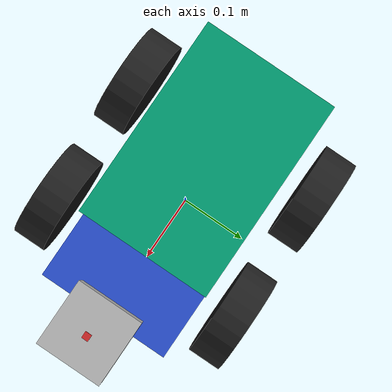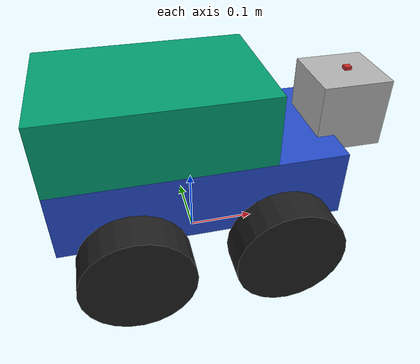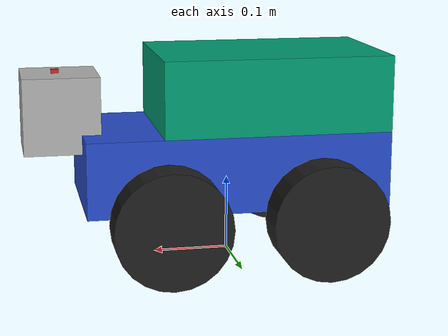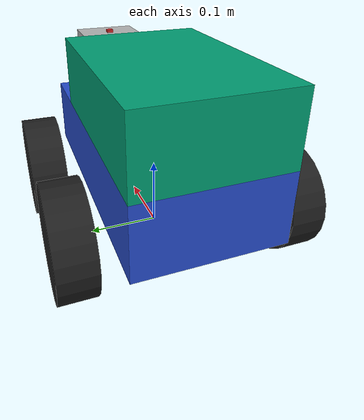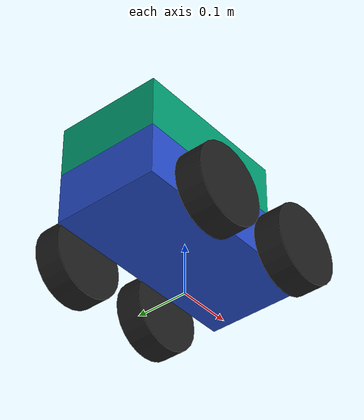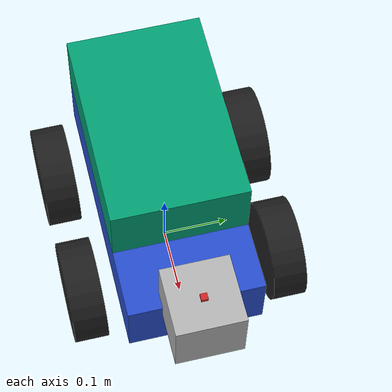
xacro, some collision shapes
<?xml version="1.0"?>
<robot xmlns:xacro="http://www.ros.org/wiki/xacro" name="KoBot">

  <link name="base_link">
  <inertial>
    <origin xyz="0 0 0.125" />
    <mass value="5" />
    <inertia  ixx="0.1" ixy="0.0"  ixz="0.0"  iyy="0.1"  iyz="0.0"  izz="0.1" />
  </inertial>
  <visual>
    <origin xyz="0 0 0.125"/>
    <geometry>
      <box size="0.4 0.2 0.1" />
    </geometry>
  </visual>
  <collision>
    <origin xyz="0 0 0.125"/>
    <geometry>
      <box size="0.4 0.2 0.1" />
    </geometry>
  </collision>
  </link>

  <link name="camera_link">
    <collision>
      <origin xyz="0 0 0" rpy="0 0 0"/>
      <geometry>
    <box size="0.01 0.01 0.01"/>
      </geometry>
    </collision>

    <visual>
      <origin xyz="0 0 0" rpy="0 0 0"/>
      <geometry>
    <box size="0.01 0.01 0.01"/>
      </geometry>
      <material name="red"/>
    </visual>

    <inertial>
      <mass value="1e-5" />
      <origin xyz="0 0 0" rpy="0 0 0"/>
      <inertia ixx="1e-6" ixy="0" ixz="0" iyy="1e-6" iyz="0" izz="1e-6" />
    </inertial>
  </link>

  <joint name="camera_joint" type="fixed">
    <axis xyz="0 1 0" />
    <origin xyz="0.23 0 0.25" rpy="0 0 0"/>
    <parent link="base_link"/>
    <child link="camera_link"/>
  </joint>

  <link name="box">
    <inertial>
      <origin xyz="0 0 0" />
      <mass value="5" />
      <inertia  ixx="0.1" ixy="0.0"  ixz="0.0"  iyy="0.1"  iyz="0.0"  izz="0.1" />
    </inertial>
    <visual>
      <origin xyz="0 0 0"/>
      <geometry>
        <box size="0.3 0.2 0.1" />
      </geometry>
    </visual>
    <collision>
      <origin xyz="0 0 0"/>
      <geometry>
        <box size="0.3 0.2 0.1" />
      </geometry>
    </collision>
  </link>

  <joint name="base_link_box" type="fixed">
    <parent link="base_link"/>
    <child link="box"/>
    <axis xyz="0 0 0"/>
    <origin xyz="-0.05 0 0.225"/>
  </joint>

  <gazebo reference="base_link">
    <material>Gazebo/Blue</material>
  </gazebo>

  <link name="right_wheel">
    <inertial>
      <origin rpy="1.5707963267948966 0 0" xyz="0 0 0" />
      <mass value="0.1" />
      <inertia  ixx="0.01" ixy="0.0"  ixz="0.0"  iyy="0.01"  iyz="0.0"  izz="0.01" />
    </inertial>
    <visual>
      <origin rpy="1.5707963267948966 0 0" xyz="0 0 0"/>
      <geometry>
        <cylinder length="0.05" radius="0.075"/>
      </geometry>
    </visual>
    <collision>
      <origin rpy="1.5707963267948966 0 0" xyz="0 0 0"/>
      <geometry>
        <cylinder length="0.05" radius="0.075"/>
      </geometry>
    </collision>
  </link>

  <gazebo reference="right_wheel">
    <material>Gazebo/Black</material>
  </gazebo>

  <joint name="base_link_right_wheel" type="continuous">
    <parent link="base_link"/>
    <child link="right_wheel"/>
    <axis xyz="0 1 0"/>
    <origin xyz="0.1 -0.15 0.075"/>
  </joint>

  <transmission name="T_base_link_right_wheel">
    <type>transmission_interface/SimpleTransmission</type>
    <actuator name="motor_1">
      <mechanicalReduction>1</mechanicalReduction>
      <hardwareInterface>hardware_interface/VelocityJointInterface</hardwareInterface>
    </actuator>
    <joint name="base_link_right_wheel">
      <hardwareInterface>hardware_interface/VelocityJointInterface</hardwareInterface>
    </joint>
  </transmission>

  <link name="left_wheel">
    <inertial>
      <origin rpy="1.5707963267948966 0 0" xyz="0 0 0" />
      <mass value="0.1" />
      <inertia  ixx="0.01" ixy="0.0"  ixz="0.0"  iyy="0.01"  iyz="0.0"  izz="0.01" />
    </inertial>
    <visual>
      <origin rpy="1.5707963267948966 0 0" xyz="0 0 0"/>
      <geometry>
        <cylinder length="0.05" radius="0.075"/>
      </geometry>
    </visual>
    <collision>
      <origin rpy="1.5707963267948966 0 0" xyz="0 0 0"/>
      <geometry>
        <cylinder length="0.05" radius="0.075"/>
      </geometry>
    </collision>
  </link>

  <gazebo reference="left_wheel">
    <material>Gazebo/Black</material>
  </gazebo>

  <joint name="base_link_left_wheel" type="continuous">
    <parent link="base_link"/>
    <child link="left_wheel"/>
    <axis xyz="0 1 0"/>
    <origin xyz="0.1 0.15 0.075"/>
  </joint>

  <transmission name="T_base_link_left_wheel">
    <type>transmission_interface/SimpleTransmission</type>
    <actuator name="motor_2">
      <mechanicalReduction>1</mechanicalReduction>
      <hardwareInterface>hardware_interface/VelocityJointInterface</hardwareInterface>
    </actuator>
    <joint name="base_link_left_wheel">
      <hardwareInterface>hardware_interface/VelocityJointInterface</hardwareInterface>
    </joint>
  </transmission>

  <link name="right_back_wheel">
  <inertial>
    <origin rpy="1.5707963267948966 0 0" xyz="0 0 0" />
    <mass value="0.1" />
    <inertia  ixx="0.01" ixy="0.0"  ixz="0.0"  iyy="0.01"  iyz="0.0"  izz="0.01" />
  </inertial>
  <visual>
    <origin rpy="1.5707963267948966 0 0" xyz="0 0 0"/>
    <geometry>
      <cylinder length="0.05" radius="0.075"/>
    </geometry>
  </visual>
  <collision>
    <origin rpy="1.5707963267948966 0 0" xyz="0 0 0"/>
    <geometry>
      <cylinder length="0.05" radius="0.075"/>
    </geometry>
  </collision>
  </link>

  <gazebo reference="right_back_wheel">
    <material>Gazebo/Black</material>
    <mu1> 0.0 </mu1>
    <mu2>0.0</mu2>
  </gazebo>

  <joint name="base_link_right_back_wheel" type="continuous">
    <parent link="base_link"/>
    <child link="right_back_wheel"/>
    <axis xyz="0 1 0"/>
    <origin xyz="-0.1 -0.15 0.075"/>
  </joint>

  <transmission name="T_base_link_right_back_wheel">
    <type>transmission_interface/SimpleTransmission</type>
    <actuator name="motor_3">
      <mechanicalReduction>1</mechanicalReduction>
      <hardwareInterface>hardware_interface/VelocityJointInterface</hardwareInterface>
    </actuator>
    <joint name="base_link_right_back_wheel">
      <hardwareInterface>hardware_interface/VelocityJointInterface</hardwareInterface>
    </joint>
  </transmission>

  <link name="left_back_wheel">
  <inertial>
    <origin rpy="1.5707963267948966 0 0" xyz="0 0 0" />
    <mass value="0.1" />
    <inertia  ixx="0.01" ixy="0.0"  ixz="0.0"  iyy="0.01"  iyz="0.0"  izz="0.01" />
  </inertial>
  <visual>
    <origin rpy="1.5707963267948966 0 0" xyz="0 0 0"/>
    <geometry>
      <cylinder length="0.05" radius="0.075"/>
    </geometry>
  </visual>
  <collision>
    <origin rpy="1.5707963267948966 0 0" xyz="0 0 0"/>
    <geometry>
      <cylinder length="0.05" radius="0.075"/>
    </geometry>
  </collision>
  </link>

  <gazebo reference="left_back_wheel">
    <material>Gazebo/Black</material>
    <mu1> 0.0 </mu1>
    <mu2>0.0</mu2>
  </gazebo>

  <joint name="base_link_left_back_wheel" type="continuous">
    <parent link="base_link"/>
    <child link="left_back_wheel"/>
    <axis xyz="0 1 0"/>
    <origin xyz="-0.1 0.15 0.075"/>
  </joint>

  <transmission name="T_base_link_left_back_wheel">
    <type>transmission_interface/SimpleTransmission</type>
    <actuator name="motor_4">
      <mechanicalReduction>1</mechanicalReduction>
      <hardwareInterface>hardware_interface/VelocityJointInterface</hardwareInterface>
    </actuator>
    <joint name="base_link_left_back_wheel">
      <hardwareInterface>hardware_interface/VelocityJointInterface</hardwareInterface>
    </joint>
  </transmission>

<!-- camera -->
  <gazebo reference="camera_link">
    <sensor type="camera" name="camera1">
      <update_rate>30.0</update_rate>
      <camera name="head">
        <horizontal_fov>1.3962634</horizontal_fov>
        <image>
          <width>800</width>
          <height>800</height>
          <format>R8G8B8</format>
        </image>
        <clip>
          <near>0.02</near>
          <far>300</far>
        </clip>
        <noise>
          <type>gaussian</type>
          <!-- Noise is sampled independently per pixel on each frame.
                That pixel's noise value is added to each of its color
                channels, which at that point lie in the range [0,1]. -->
          <mean>0.0</mean>
          <stddev>0.007</stddev>
        </noise>
      </camera>
      <plugin name="camera_controller" filename="libgazebo_ros_camera.so">
        <alwaysOn>true</alwaysOn>
        <updateRate>0.0</updateRate>
        <cameraName>/camera</cameraName>
        <imageTopicName>image_raw</imageTopicName>
        <cameraInfoTopicName>camera_info</cameraInfoTopicName>
        <frameName>camera_link</frameName>
        <hackBaseline>0.07</hackBaseline>
        <distortionK1>0.0</distortionK1>
        <distortionK2>0.0</distortionK2>
        <distortionK3>0.0</distortionK3>
        <distortionT1>0.0</distortionT1>
        <distortionT2>0.0</distortionT2>
      </plugin>
    </sensor>
  </gazebo>

<gazebo>
  <plugin name="differential_drive_controller" filename="libgazebo_ros_diff_drive.so">
    <alwaysOn>true</alwaysOn>
    <updateRate>10</updateRate>
    <leftJoint>base_link_right_wheel</leftJoint>
    <rightJoint>base_link_left_wheel</rightJoint>
    <legacyMode>True</legacyMode>
    <wheelSeparation>0.325</wheelSeparation>
    <wheelDiameter>0.15</wheelDiameter>
    <torque>1.41</torque>
    <commandTopic>cmd_vel</commandTopic>
    <odometryTopic>odom</odometryTopic>
    <odometryFrame>odom</odometryFrame>
    <robotBaseFrame>base_link</robotBaseFrame>
    <publishWheelJointState>true</publishWheelJointState>
  </plugin>
</gazebo>

  <!-- Laser  -->

  <xacro:include filename="$(find fire_fighting_robot)/urdf/hokuyo.xacro"/>
  <xacro:laser name="base_laser" parent="base_link" xyz="0.225 0 0.2" rpy="0 0 0" meshes="package://gazebo_plugins/test/multi_robot_scenario/meshes/laser"/>

</robot>

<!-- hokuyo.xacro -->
<robot xmlns:xacro="http://www.ros.org/wiki/xacro">

<xacro:property name="M_PI" value="3.1415926535897931" />

<!-- Front Laser -->
<xacro:macro name="laser" params="name parent xyz rpy meshes" >

  <joint name="${parent}_${name}_joint" type="fixed">
      <axis xyz="0 0 1" />
      <origin xyz="${xyz}" rpy="${rpy}"/>
      <parent link="${parent}"/>
      <child link="${name}"/>
    </joint>

    <link name="${name}">
      <collision>
        <origin xyz="0 0 0" rpy="0 0 0"/>
        <geometry>
          <box size="0.1 0.1 0.1"/>
        </geometry>
      </collision>
      <visual>
        <origin xyz="0 0 0" rpy="0 0 0"/>
        <geometry>
          <mesh filename="${meshes}/hokuyo.dae"/>
        </geometry>
      </visual>
      <inertial>
        <mass value="1e-5" />
        <origin xyz="0 0 0" rpy="0 0 0"/>
        <inertia ixx="1e-6" ixy="0" ixz="0" iyy="1e-6" iyz="0" izz="1e-6" />
      </inertial>
    </link>

    <gazebo reference="${name}">
        <sensor name="laser" type="ray">
        <pose>0 0 0 0 0 0</pose>
          <ray>
            <scan>
              <horizontal>
                <!-- The URG-04LX-UG01  has  683 steps with 0.35139 Degree resolution -->
                <resolution>1</resolution>
                <max_angle>2.0944</max_angle> <!-- 120 Degree -->
                <min_angle>-2.0944</min_angle> <!-- -120 Degree -->
                <samples>683</samples>
              </horizontal>
            </scan>
            <range>
              <min>0.08</min>
              <max>40</max>
              <resolution>0.01</resolution>
            </range>
          </ray>

          <plugin name="laser" filename="libgazebo_ros_laser.so" >
            <topicName>scan</topicName>
            <frameName>base_laser</frameName>
          </plugin>

          <always_on>1</always_on>
          <update_rate>30</update_rate>
          <visualize>true</visualize>
        </sensor>
    </gazebo>
</xacro:macro>

<!-- Front camera -->
<xacro:macro name="camera_link" params="parent">

  <link name="camera_link">

    <collision>
      <origin xyz="0 0 0" rpy="0 0 0" />
      <geometry>
        <mesh filename="package://sensors_and_actuators/meshes/camara.stl" scale="0.1 0.1 0.1"/>

      </geometry>
    </collision>

    <visual>
      <origin xyz="0 0 0" rpy="0 0 0" />
      <geometry>
        <mesh filename="package://sensors_and_actuators/meshes/camara.stl" scale="0.1 0.1 0.1"/>
      </geometry>
      <material name="grey">
          <color rgba="0.2 0.2 0.2 1.0"/>
      </material>
    </visual>

    <inertial>
      <mass value="0.001" />
      <origin xyz="0 0 0" rpy="0 0 0" />
      <inertia ixx="0.0001" ixy="0" ixz="0" iyy="0.0001" iyz="0" izz="0.0001" />
    </inertial>

  </link>

  <joint name="camera_joint" type="fixed">
      <parent link="${parent}"/>
      <child link="camera_link"/>
      <origin rpy="0 0 0" xyz="0.047 0.0 0.0"/>
      <axis xyz="1 0 0" />
  </joint>

  <gazebo reference="camera_link">
    <sensor type="camera" name="camera_camera_sensor">
      <update_rate>30.0</update_rate>
      <camera>
        <pose>0.035 0 0.078 0 ${-M_PI/2} 0</pose>
        <horizontal_fov>${85 * M_PI/180.0}</horizontal_fov>
        <image>
          <format>R8G8B8</format>
          <width>1020</width>
          <height>1020</height>
        </image>
        <clip>
          <near>0.01</near>
          <far>100</far>
        </clip>
      </camera>

      <plugin name="camera_camera_controller" filename="libgazebo_ros_camera.so">
        <alwaysOn>true</alwaysOn>
        <updateRate>0.0</updateRate>
        <cameraName>arm_sensor/camera</cameraName>
        <imageTopicName>image_raw</imageTopicName>
        <cameraInfoTopicName>camera_info</cameraInfoTopicName>
        <frameName>camera_link</frameName>
        <hackBaseline>0.07</hackBaseline>
        <distortionK1>0.0</distortionK1>
        <distortionK2>0.0</distortionK2>
        <distortionK3>0.0</distortionK3>
        <distortionT1>0.0</distortionT1>
        <distortionT2>0.0</distortionT2>
      </plugin>
    </sensor>
  </gazebo>
</xacro:macro>

</robot>
